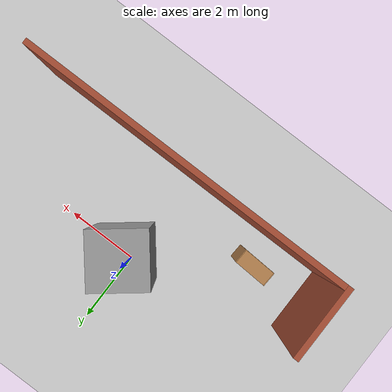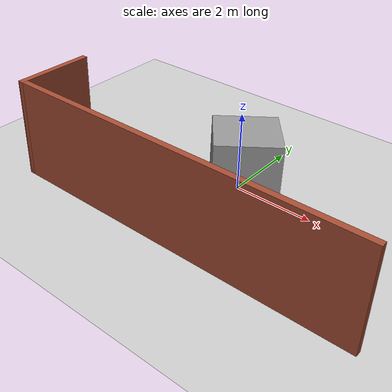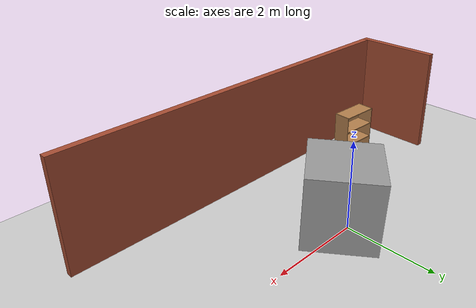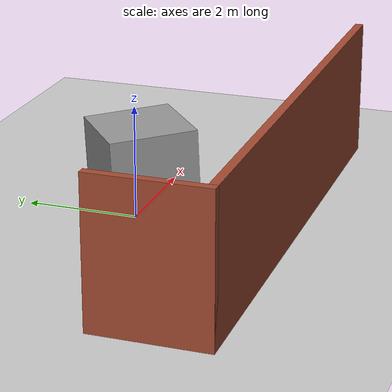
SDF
<sdf version="1.6">
 <world name="default">
  <light name="sun" type="directional">
   <pose>0 0 10 0 -0 0</pose>
   <diffuse>0.8 0.8 0.8 1</diffuse>
   <specular>0.2 0.2 0.2 1</specular>
   <attenuation>
    <range>1000</range>
    <constant>0.9</constant>
    <linear>0.01</linear>
    <quadratic>0.001</quadratic>
   </attenuation>
   <direction>-0.5 0.1 -0.9</direction>
  </light>
  <model name="ground_plane">
   <static>1</static>
   <link name="link">
    <collision name="collision">
     <geometry><plane><normal>0 0 1</normal><size>100 100</size></plane></geometry>
     <surface><friction><ode><mu>100</mu><mu2>50</mu2></ode></friction></surface>
    </collision>
    <visual name="visual">
     <cast_shadows>0</cast_shadows>
     <geometry><plane><normal>0 0 1</normal><size>100 100</size></plane></geometry>
     <material>
      <script><uri>file://media/materials/scripts/gazebo.material</uri><name>Gazebo/Grey</name></script>
     </material>
    </visual>
   </link>
  </model>
  <gravity>0 0 -9.8</gravity>
  <magnetic_field>6e-06 2.3e-05 -4.2e-05</magnetic_field>
  <atmosphere type="adiabatic"/>
  <physics name="default_physics" default="0" type="ode">
   <max_step_size>0.001</max_step_size>
   <real_time_factor>1</real_time_factor>
   <real_time_update_rate>1000</real_time_update_rate>
  </physics>
  <scene><ambient>0.4 0.4 0.4 1</ambient><background>0.7 0.7 0.7 1</background><shadows>1</shadows></scene>
  <spherical_coordinates>
   <surface_model>EARTH_WGS84</surface_model>
   <latitude_deg>0</latitude_deg>
   <longitude_deg>0</longitude_deg>
   <elevation>0</elevation>
   <heading_deg>0</heading_deg>
  </spherical_coordinates>
  <model name="unit_box">
   <pose>0.18717 -0.055532 0.845593 -0.011981 -0.042009 -0.895187</pose>
   <link name="link">
    <inertial>
     <mass>1</mass>
     <inertia>
      <ixx>0.166667</ixx>
      <ixy>0</ixy>
      <ixz>0</ixz>
      <iyy>0.166667</iyy>
      <iyz>0</iyz>
      <izz>0.166667</izz>
     </inertia>
    </inertial>
    <collision name="collision"><geometry><box><size>1.5393 1.56292 1.62937</size></box></geometry></collision>
    <visual name="visual">
     <geometry><box><size>1.5393 1.56292 1.62937</size></box></geometry>
     <material>
      <script><name>Gazebo/Grey</name><uri>file://media/materials/scripts/gazebo.material</uri></script>
     </material>
    </visual>
   </link>
  </model>
  <light name="user_point_light_0" type="point">
   <pose>-9.61467 15.436 1 0 -0 0</pose>
   <diffuse>0.5 0.5 0.5 1</diffuse>
   <specular>0.1 0.1 0.1 1</specular>
   <attenuation>
    <range>20</range>
    <constant>0.5</constant>
    <linear>0.01</linear>
    <quadratic>0.001</quadratic>
   </attenuation>
   <cast_shadows>0</cast_shadows>
   <direction>0 0 -1</direction>
  </light>
  <model name="wall1">
   <pose>0.165 -1.855 0 0 -0 0</pose>
   <link name="Wall_4">
    <collision name="Wall_4_Collision">
     <geometry><box><size>2 0.15 2.5</size></box></geometry>
     <pose>0 0 1.25 0 -0 0</pose>
    </collision>
    <visual name="Wall_4_Visual">
     <pose>0 0 1.25 0 -0 0</pose>
     <geometry><box><size>2 0.15 2.5</size></box></geometry>
     <material>
      <script><uri>file://media/materials/scripts/gazebo.material</uri><name>Gazebo/Bricks</name></script>
      <ambient>1 1 1 1</ambient>
     </material>
     <meta><layer>0</layer></meta>
    </visual>
    <pose>-4.425 -0 0 0 -0 -1.5708</pose>
   </link>
   <link name="Wall_5">
    <collision name="Wall_5_Collision">
     <geometry><box><size>9 0.15 2.5</size></box></geometry>
     <pose>0 0 1.25 0 -0 0</pose>
    </collision>
    <visual name="Wall_5_Visual">
     <pose>0 0 1.25 0 -0 0</pose>
     <geometry><box><size>9 0.15 2.5</size></box></geometry>
     <material>
      <script><uri>file://media/materials/scripts/gazebo.material</uri><name>Gazebo/Bricks</name></script>
      <ambient>1 1 1 1</ambient>
     </material>
     <meta><layer>0</layer></meta>
    </visual>
    <pose>0 -0.925 0 0 -0 0</pose>
   </link>
   <static>1</static>
  </model>
  <model name="bookshelf">
   <static>1</static>
   <link name="link">
    <inertial><mass>1</mass></inertial>
    <collision name="back">
     <pose>0 0.005 0.6 0 -0 0</pose>
     <geometry><box><size>0.9 0.01 1.2</size></box></geometry>
    </collision>
    <visual name="visual1">
     <pose>0 0.005 0.6 0 -0 0</pose>
     <geometry><box><size>0.9 0.01 1.2</size></box></geometry>
     <material>
      <script><uri>file://media/materials/scripts/gazebo.material</uri><name>Gazebo/Wood</name></script>
     </material>
    </visual>
    <collision name="left_side">
     <pose>0.45 -0.195 0.6 0 -0 0</pose>
     <geometry><box><size>0.02 0.4 1.2</size></box></geometry>
    </collision>
    <visual name="visual2">
     <pose>0.45 -0.195 0.6 0 -0 0</pose>
     <geometry><box><size>0.02 0.4 1.2</size></box></geometry>
     <material>
      <script><uri>file://media/materials/scripts/gazebo.material</uri><name>Gazebo/Wood</name></script>
     </material>
    </visual>
    <collision name="right_side">
     <pose>-0.45 -0.195 0.6 0 -0 0</pose>
     <geometry><box><size>0.02 0.4 1.2</size></box></geometry>
    </collision>
    <visual name="visual3">
     <pose>-0.45 -0.195 0.6 0 -0 0</pose>
     <geometry><box><size>0.02 0.4 1.2</size></box></geometry>
     <material>
      <script><uri>file://media/materials/scripts/gazebo.material</uri><name>Gazebo/Wood</name></script>
     </material>
    </visual>
    <collision name="bottom">
     <pose>0 -0.195 0.03 0 -0 0</pose>
     <geometry><box><size>0.88 0.4 0.06</size></box></geometry>
    </collision>
    <visual name="visual4">
     <pose>0 -0.195 0.03 0 -0 0</pose>
     <geometry><box><size>0.88 0.4 0.06</size></box></geometry>
     <material>
      <script><uri>file://media/materials/scripts/gazebo.material</uri><name>Gazebo/Wood</name></script>
     </material>
    </visual>
    <collision name="top">
     <pose>0 -0.195 1.19 0 -0 0</pose>
     <geometry><box><size>0.88 0.4 0.02</size></box></geometry>
    </collision>
    <visual name="visual5">
     <pose>0 -0.195 1.19 0 -0 0</pose>
     <geometry><box><size>0.88 0.4 0.02</size></box></geometry>
     <material>
      <script><uri>file://media/materials/scripts/gazebo.material</uri><name>Gazebo/Wood</name></script>
     </material>
    </visual>
    <collision name="low_shelf">
     <pose>0 -0.195 0.43 0 -0 0</pose>
     <geometry><box><size>0.88 0.4 0.02</size></box></geometry>
    </collision>
    <visual name="visual6">
     <pose>0 -0.195 0.43 0 -0 0</pose>
     <geometry><box><size>0.88 0.4 0.02</size></box></geometry>
     <material>
      <script><uri>file://media/materials/scripts/gazebo.material</uri><name>Gazebo/Wood</name></script>
     </material>
    </visual>
    <collision name="high_shelf">
     <pose>0 -0.195 0.8 0 -0 0</pose>
     <geometry><box><size>0.88 0.4 0.02</size></box></geometry>
    </collision>
    <visual name="visual7">
     <pose>0 -0.195 0.8 0 -0 0</pose>
     <geometry><box><size>0.88 0.4 0.02</size></box></geometry>
     <material>
      <script><uri>file://media/materials/scripts/gazebo.material</uri><name>Gazebo/Wood</name></script>
     </material>
    </visual>
   </link>
   <pose>-2.62116 -2.06604 0 0 -0 3.09066</pose>
  </model>
 </world>
</sdf>
